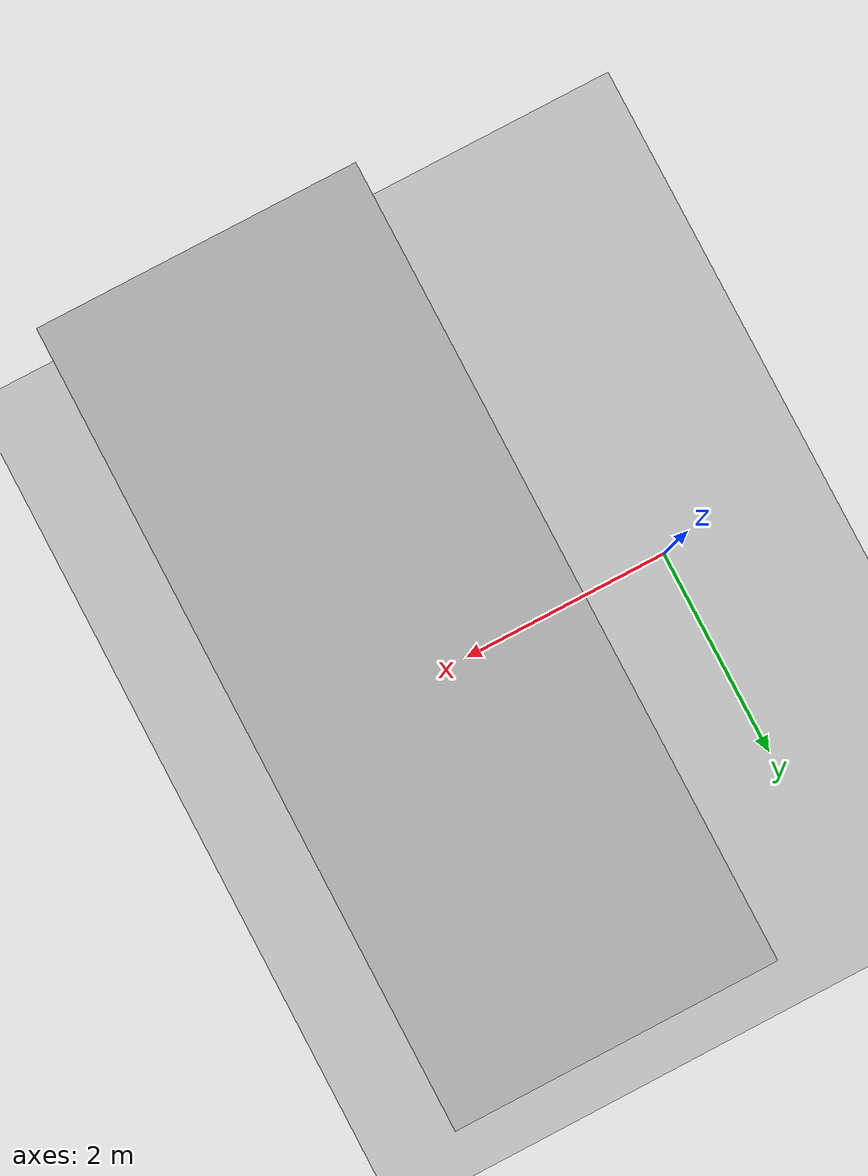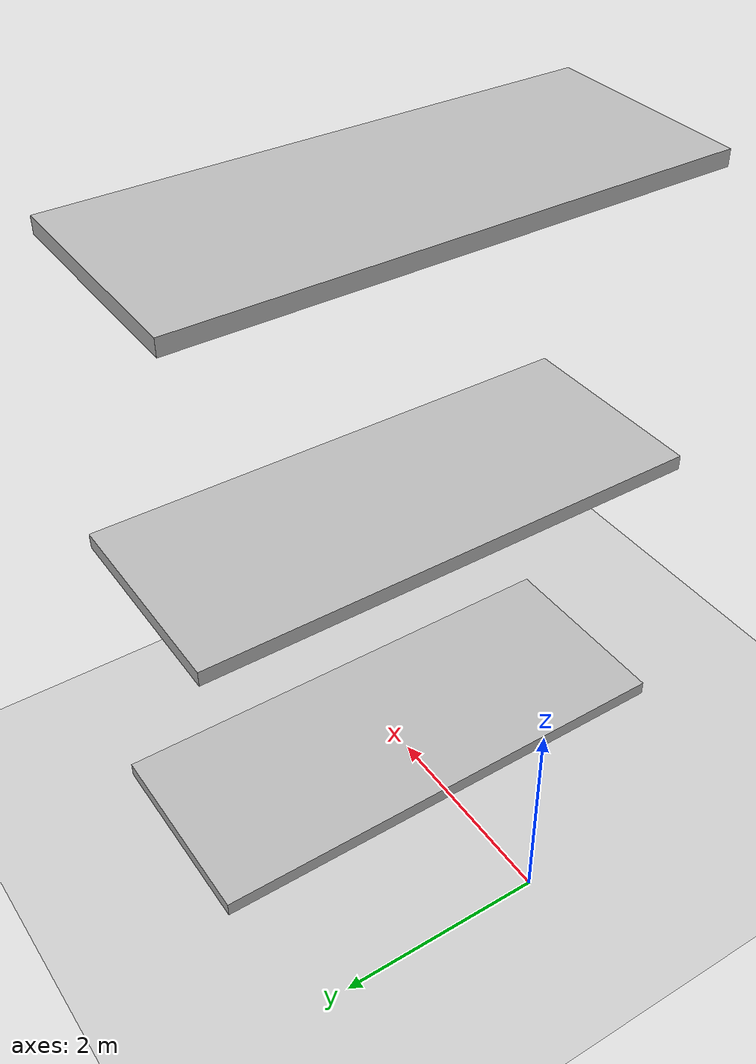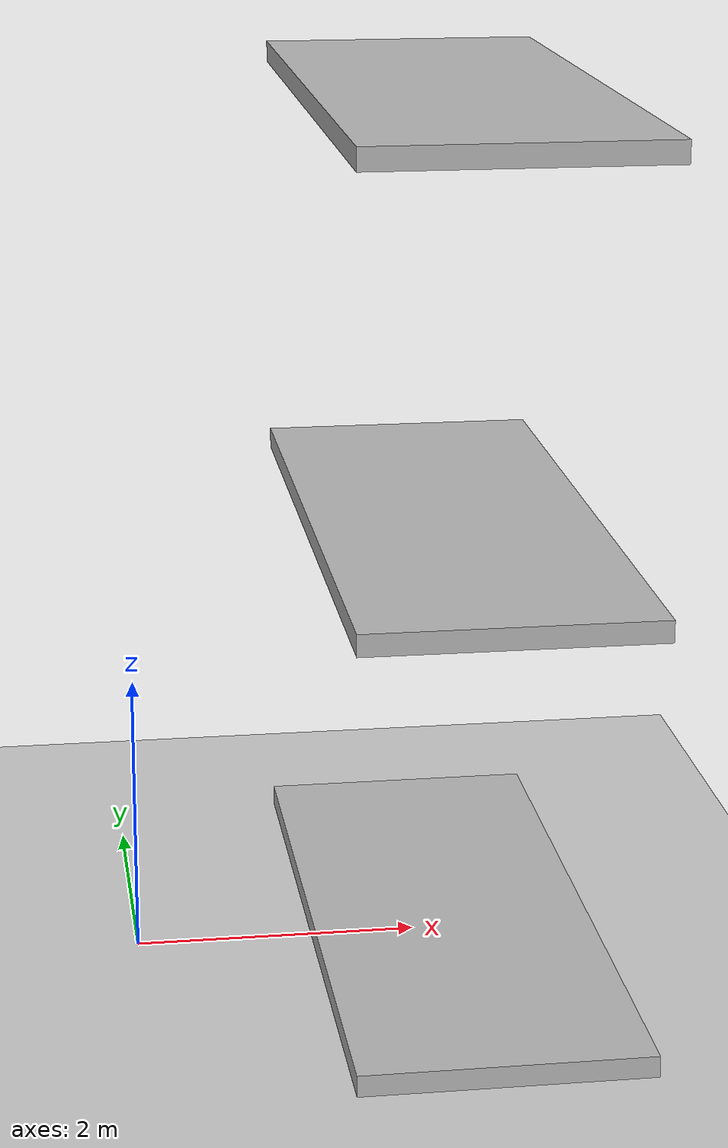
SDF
<sdf version="1.5">
 <world name="default">
  <model name="ground_plane">
   <static>1</static>
   <link name="link">
    <collision name="collision">
     <geometry><plane><normal>0 0 1</normal><size>1000 1000</size></plane></geometry>
     <surface><friction><ode><mu>100</mu><mu2>50</mu2></ode></friction></surface>
    </collision>
    <visual name="visual">
     <cast_shadows>0</cast_shadows>
     <geometry><plane><normal>0 0 1</normal><size>1000 1000</size></plane></geometry>
     <material>
      <script><uri>file://media/materials/scripts/gazebo.material</uri><name>Gazebo/Grey</name></script>
     </material>
    </visual>
   </link>
  </model>
  <model name="floor0">
   <pose>2.25 0 0.075 0 0 0</pose>
   <static>true</static>
   <link name="link">
    <collision name="floor_collision"><geometry><box><size>2.0 5.0 0.15</size></box></geometry></collision>
    <visual name="floor_visual"><geometry><box><size>2.0 5.0 0.15</size></box></geometry></visual>
   </link>
  </model>
  <model name="floor1">
   <pose>2.25 0 3.075 0 0 0</pose>
   <static>true</static>
   <link name="link">
    <collision name="floor_collision"><geometry><box><size>2.0 5.0 0.15</size></box></geometry></collision>
    <visual name="floor_visual"><geometry><box><size>2.0 5.0 0.15</size></box></geometry></visual>
   </link>
  </model>
  <model name="floor2">
   <pose>2.25 0 6.075 0 0 0</pose>
   <static>true</static>
   <link name="link">
    <collision name="floor_collision"><geometry><box><size>2.0 5.0 0.15</size></box></geometry></collision>
    <visual name="floor_visual"><geometry><box><size>2.0 5.0 0.15</size></box></geometry></visual>
   </link>
  </model>
 </world>
</sdf>
